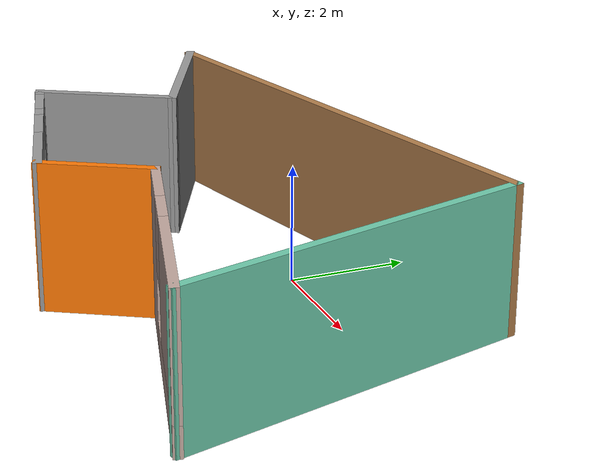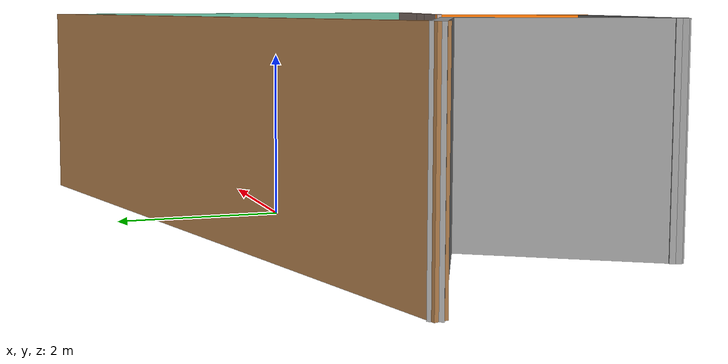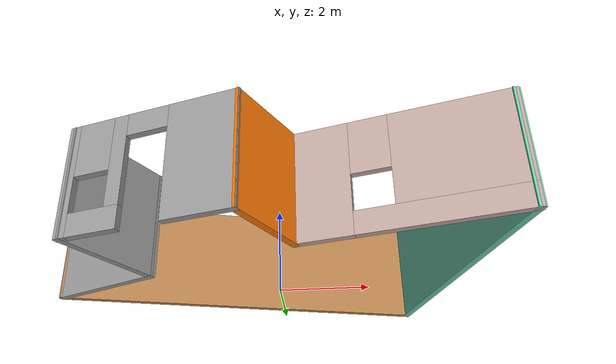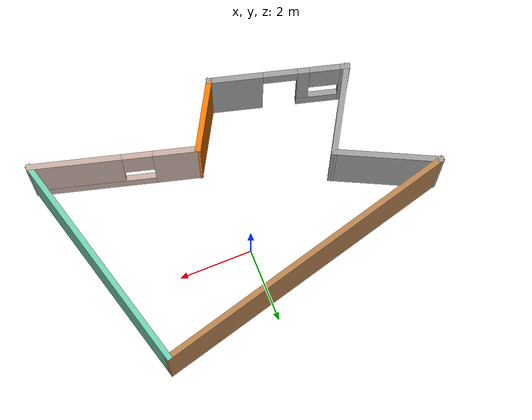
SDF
<?xml version='1.0'?>
<sdf version='1.6'>
  <model name='h3'>
    <pose frame=''>-0.257855 -0.88799 0 0 -0 0</pose>
    <link name='Wall_0'>
      <collision name='Wall_0_Collision'>
        <geometry>
          <box>
            <size>2.5 0.15 2.5</size>
          </box>
        </geometry>
        <pose frame=''>0 0 1.25 0 -0 0</pose>
      </collision>
      <visual name='Wall_0_Visual'>
        <pose frame=''>0 0 1.25 0 -0 0</pose>
        <geometry>
          <box>
            <size>2.5 0.15 2.5</size>
          </box>
        </geometry>
        <material>
          <script>
            <uri>file://media/materials/scripts/gazebo.material</uri>
            <name>Gazebo/Grey</name>
          </script>
          <ambient>1 1 1 1</ambient>
        </material>
        <meta>
          <layer>0</layer>
        </meta>
      </visual>
      <pose frame=''>-3.06964 -1.22959 0 0 0 -2.0944</pose>
    </link>
    <link name='Wall_1'>
      <pose frame=''>-1.91848 -2.71304 0 0 0 -0.261799</pose>
      <visual name='Wall_1_Visual_0'>
        <pose frame=''>-1.74877 0 1.25 0 -0 0</pose>
        <geometry>
          <box>
            <size>0.25246 0.15 2.5</size>
          </box>
        </geometry>
        <material>
          <script>
            <uri>file://media/materials/scripts/gazebo.material</uri>
            <name>Gazebo/Grey</name>
          </script>
          <ambient>1 1 1 1</ambient>
        </material>
        <meta>
          <layer>0</layer>
        </meta>
      </visual>
      <collision name='Wall_1_Collision_0'>
        <geometry>
          <box>
            <size>0.25246 0.15 2.5</size>
          </box>
        </geometry>
        <pose frame=''>-1.74877 0 1.25 0 -0 0</pose>
      </collision>
      <visual name='Wall_1_Visual_1'>
        <pose frame=''>1.13451 0 1.25 0 -0 0</pose>
        <geometry>
          <box>
            <size>1.48099 0.15 2.5</size>
          </box>
        </geometry>
        <material>
          <script>
            <uri>file://media/materials/scripts/gazebo.material</uri>
            <name>Gazebo/Grey</name>
          </script>
          <ambient>1 1 1 1</ambient>
        </material>
        <meta>
          <layer>0</layer>
        </meta>
      </visual>
      <collision name='Wall_1_Collision_1'>
        <geometry>
          <box>
            <size>1.48099 0.15 2.5</size>
          </box>
        </geometry>
        <pose frame=''>1.13451 0 1.25 0 -0 0</pose>
      </collision>
      <visual name='Wall_1_Visual_2'>
        <pose frame=''>-1.06426 0 0.25 0 -0 0</pose>
        <geometry>
          <box>
            <size>1.11655 0.15 0.5</size>
          </box>
        </geometry>
        <material>
          <script>
            <uri>file://media/materials/scripts/gazebo.material</uri>
            <name>Gazebo/Grey</name>
          </script>
          <ambient>1 1 1 1</ambient>
        </material>
        <meta>
          <layer>0</layer>
        </meta>
      </visual>
      <collision name='Wall_1_Collision_2'>
        <geometry>
          <box>
            <size>1.11655 0.15 0.5</size>
          </box>
        </geometry>
        <pose frame=''>-1.06426 0 0.25 0 -0 0</pose>
      </collision>
      <visual name='Wall_1_Visual_3'>
        <pose frame=''>-0.664263 0 1.5 0 -0 0</pose>
        <geometry>
          <box>
            <size>0.316554 0.15 2</size>
          </box>
        </geometry>
        <material>
          <script>
            <uri>file://media/materials/scripts/gazebo.material</uri>
            <name>Gazebo/Grey</name>
          </script>
          <ambient>1 1 1 1</ambient>
        </material>
        <meta>
          <layer>0</layer>
        </meta>
      </visual>
      <collision name='Wall_1_Collision_3'>
        <geometry>
          <box>
            <size>0.316554 0.15 2</size>
          </box>
        </geometry>
        <pose frame=''>-0.664263 0 1.5 0 -0 0</pose>
      </collision>
      <visual name='Wall_1_Visual_4'>
        <pose frame=''>-1.22254 0 1.9 0 -0 0</pose>
        <geometry>
          <box>
            <size>0.8 0.15 1.2</size>
          </box>
        </geometry>
        <material>
          <script>
            <uri>file://media/materials/scripts/gazebo.material</uri>
            <name>Gazebo/Grey</name>
          </script>
          <ambient>1 1 1 1</ambient>
        </material>
        <meta>
          <layer>0</layer>
        </meta>
      </visual>
      <collision name='Wall_1_Collision_4'>
        <geometry>
          <box>
            <size>0.8 0.15 1.2</size>
          </box>
        </geometry>
        <pose frame=''>-1.22254 0 1.9 0 -0 0</pose>
      </collision>
      <visual name='Wall_1_Visual_5'>
        <pose frame=''>-0.055986 0 2.25 0 -0 0</pose>
        <geometry>
          <box>
            <size>0.9 0.15 0.5</size>
          </box>
        </geometry>
        <material>
          <script>
            <uri>file://media/materials/scripts/gazebo.material</uri>
            <name>Gazebo/Grey</name>
          </script>
          <ambient>1 1 1 1</ambient>
        </material>
        <meta>
          <layer>0</layer>
        </meta>
      </visual>
      <collision name='Wall_1_Collision_5'>
        <geometry>
          <box>
            <size>0.9 0.15 0.5</size>
          </box>
        </geometry>
        <pose frame=''>-0.055986 0 2.25 0 -0 0</pose>
      </collision>
    </link>
    <link name='Wall_2'>
      <collision name='Wall_2_Collision'>
        <geometry>
          <box>
            <size>2 0.15 2.5</size>
          </box>
        </geometry>
        <pose frame=''>0 0 1.25 0 -0 0</pose>
      </collision>
      <visual name='Wall_2_Visual'>
        <pose frame=''>0 0 1.25 0 -0 0</pose>
        <geometry>
          <box>
            <size>2 0.15 2.5</size>
          </box>
        </geometry>
        <material>
          <script>
            <uri>file://media/materials/scripts/gazebo.material</uri>
            <name>Gazebo/Grey</name>
          </script>
          <ambient>0.996078 0.47451 0.0196078 1</ambient>
        </material>
        <meta>
          <layer>0</layer>
        </meta>
      </visual>
      <pose frame=''>0.282688 -2.37784 0 0 -0 1.0472</pose>
    </link>
    <link name='Wall_3'>
      <pose frame=''>2.84608 -2.1397 0 0 0 -0.261799</pose>
      <visual name='Wall_3_Visual_0'>
        <pose frame=''>-1.62367 0 1.25 0 -0 0</pose>
        <geometry>
          <box>
            <size>1.25266 0.15 2.5</size>
          </box>
        </geometry>
        <material>
          <script>
            <uri>file://media/materials/scripts/gazebo.material</uri>
            <name>Gazebo/Grey</name>
          </script>
          <ambient>0.760784 0.662745 0.627451 1</ambient>
        </material>
        <meta>
          <layer>0</layer>
        </meta>
      </visual>
      <collision name='Wall_3_Collision_0'>
        <geometry>
          <box>
            <size>1.25266 0.15 2.5</size>
          </box>
        </geometry>
        <pose frame=''>-1.62367 0 1.25 0 -0 0</pose>
      </collision>
      <visual name='Wall_3_Visual_1'>
        <pose frame=''>0.626328 0 0.25 0 -0 0</pose>
        <geometry>
          <box>
            <size>3.24734 0.15 0.5</size>
          </box>
        </geometry>
        <material>
          <script>
            <uri>file://media/materials/scripts/gazebo.material</uri>
            <name>Gazebo/Grey</name>
          </script>
          <ambient>0.760784 0.662745 0.627451 1</ambient>
        </material>
        <meta>
          <layer>0</layer>
        </meta>
      </visual>
      <collision name='Wall_3_Collision_1'>
        <geometry>
          <box>
            <size>3.24734 0.15 0.5</size>
          </box>
        </geometry>
        <pose frame=''>0.626328 0 0.25 0 -0 0</pose>
      </collision>
      <visual name='Wall_3_Visual_2'>
        <pose frame=''>1.02633 0 1.5 0 -0 0</pose>
        <geometry>
          <box>
            <size>2.44734 0.15 2</size>
          </box>
        </geometry>
        <material>
          <script>
            <uri>file://media/materials/scripts/gazebo.material</uri>
            <name>Gazebo/Grey</name>
          </script>
          <ambient>0.760784 0.662745 0.627451 1</ambient>
        </material>
        <meta>
          <layer>0</layer>
        </meta>
      </visual>
      <collision name='Wall_3_Collision_2'>
        <geometry>
          <box>
            <size>2.44734 0.15 2</size>
          </box>
        </geometry>
        <pose frame=''>1.02633 0 1.5 0 -0 0</pose>
      </collision>
      <visual name='Wall_3_Visual_3'>
        <pose frame=''>-0.597344 0 1.9 0 -0 0</pose>
        <geometry>
          <box>
            <size>0.8 0.15 1.2</size>
          </box>
        </geometry>
        <material>
          <script>
            <uri>file://media/materials/scripts/gazebo.material</uri>
            <name>Gazebo/Grey</name>
          </script>
          <ambient>0.760784 0.662745 0.627451 1</ambient>
        </material>
        <meta>
          <layer>0</layer>
        </meta>
      </visual>
      <collision name='Wall_3_Collision_3'>
        <geometry>
          <box>
            <size>0.8 0.15 1.2</size>
          </box>
        </geometry>
        <pose frame=''>-0.597344 0 1.9 0 -0 0</pose>
      </collision>
    </link>
    <link name='Wall_4'>
      <collision name='Wall_4_Collision'>
        <geometry>
          <box>
            <size>6.25 0.15 2.5</size>
          </box>
        </geometry>
        <pose frame=''>0 0 1.25 0 -0 0</pose>
      </collision>
      <visual name='Wall_4_Visual'>
        <pose frame=''>0 0 1.25 0 -0 0</pose>
        <geometry>
          <box>
            <size>6.25 0.15 2.5</size>
          </box>
        </geometry>
        <material>
          <script>
            <uri>file://media/materials/scripts/gazebo.material</uri>
            <name>Gazebo/Grey</name>
          </script>
          <ambient>0.435294 0.796078 0.67451 1</ambient>
        </material>
        <meta>
          <layer>0</layer>
        </meta>
      </visual>
      <pose frame=''>4.15757 0.24344 0 0 -0 1.8326</pose>
    </link>
    <link name='Wall_5'>
      <collision name='Wall_5_Collision'>
        <geometry>
          <box>
            <size>8.75 0.15 2.5</size>
          </box>
        </geometry>
        <pose frame=''>0 0 1.25 0 -0 0</pose>
      </collision>
      <visual name='Wall_5_Visual'>
        <pose frame=''>0 0 1.25 0 -0 0</pose>
        <geometry>
          <box>
            <size>8.75 0.15 2.5</size>
          </box>
        </geometry>
        <material>
          <script>
            <uri>file://media/materials/scripts/gazebo.material</uri>
            <name>Gazebo/Wood</name>
          </script>
          <ambient>1 1 1 1</ambient>
        </material>
        <meta>
          <layer>0</layer>
        </meta>
      </visual>
      <pose frame=''>-0.785312 2.07659 0 0 0 -2.87979</pose>
    </link>
    <link name='Wall_6'>
      <collision name='Wall_6_Collision'>
        <geometry>
          <box>
            <size>2.87348 0.15 2.5</size>
          </box>
        </geometry>
        <pose frame=''>0 0 1.25 0 -0 0</pose>
      </collision>
      <visual name='Wall_6_Visual'>
        <pose frame=''>0 0 1.25 0 -0 0</pose>
        <geometry>
          <box>
            <size>2.87348 0.15 2.5</size>
          </box>
        </geometry>
        <material>
          <script>
            <uri>file://media/materials/scripts/gazebo.material</uri>
            <name>Gazebo/Grey</name>
          </script>
          <ambient>1 1 1 1</ambient>
        </material>
        <meta>
          <layer>0</layer>
        </meta>
      </visual>
      <pose frame=''>-3.71047 0.37583 0 0 0 -0.446358</pose>
    </link>
    <static>1</static>
  </model>
</sdf>
